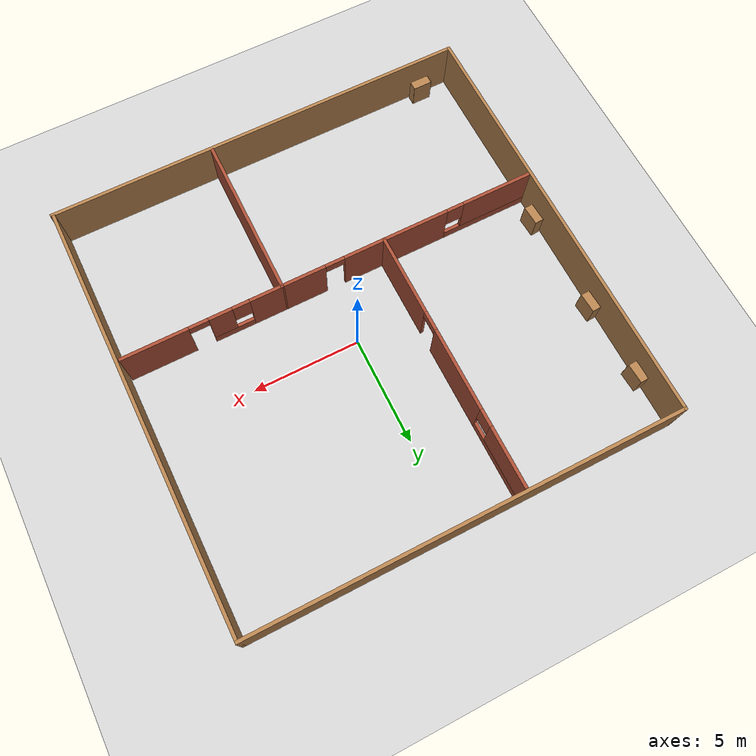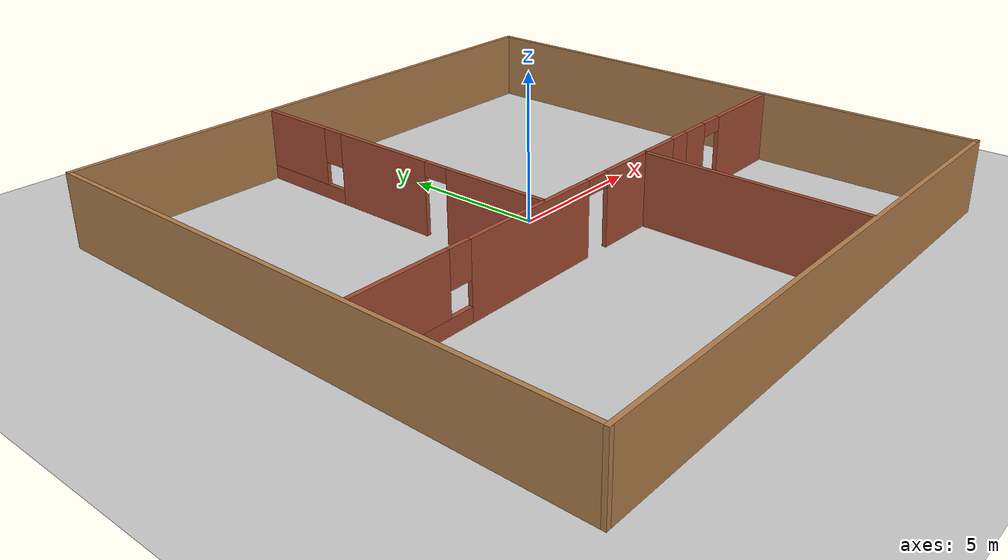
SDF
<sdf version="1.4">
 <world name="default">
  <include><uri>model://sun</uri></include>
  <include><uri>model://ground_plane</uri></include>
  <model name="Class">
   <pose>-0.2122 -0.622471 0 0 -0 0</pose>
   <link name="Wall_16">
    <collision name="Wall_16_Collision">
     <geometry><box><size>19.9 0.15 2.5</size></box></geometry>
     <pose>0 0 1.25 0 -0 0</pose>
    </collision>
    <visual name="Wall_16_Visual">
     <pose>0 0 1.25 0 -0 0</pose>
     <geometry><box><size>19.9 0.15 2.5</size></box></geometry>
     <material>
      <script><uri>file://media/materials/scripts/gazebo.material</uri><name>Gazebo/Wood</name></script>
      <ambient>1 1 1 1</ambient>
     </material>
     <meta><layer>0</layer></meta>
    </visual>
    <pose>-9.9 0 0 0 -0 1.5708</pose>
   </link>
   <link name="Wall_18">
    <collision name="Wall_18_Collision">
     <geometry><box><size>19.9 0.15 2.5</size></box></geometry>
     <pose>0 0 1.25 0 -0 0</pose>
    </collision>
    <visual name="Wall_18_Visual">
     <pose>0 0 1.25 0 -0 0</pose>
     <geometry><box><size>19.9 0.15 2.5</size></box></geometry>
     <material>
      <script><uri>file://media/materials/scripts/gazebo.material</uri><name>Gazebo/Wood</name></script>
      <ambient>1 1 1 1</ambient>
     </material>
     <meta><layer>0</layer></meta>
    </visual>
    <pose>-0.025 9.875 0 0 -0 0</pose>
   </link>
   <link name="Wall_20">
    <collision name="Wall_20_Collision">
     <geometry><box><size>19.9 0.15 2.5</size></box></geometry>
     <pose>0 0 1.25 0 -0 0</pose>
    </collision>
    <visual name="Wall_20_Visual">
     <pose>0 0 1.25 0 -0 0</pose>
     <geometry><box><size>19.9 0.15 2.5</size></box></geometry>
     <material>
      <script><uri>file://media/materials/scripts/gazebo.material</uri><name>Gazebo/Wood</name></script>
      <ambient>1 1 1 1</ambient>
     </material>
     <meta><layer>0</layer></meta>
    </visual>
    <pose>9.85 0 0 0 -0 -1.5708</pose>
   </link>
   <link name="Wall_9">
    <collision name="Wall_9_Collision">
     <geometry><box><size>19.95 0.15 2.5</size></box></geometry>
     <pose>0 0 1.25 0 -0 0</pose>
    </collision>
    <visual name="Wall_9_Visual">
     <pose>0 0 1.25 0 -0 0</pose>
     <geometry><box><size>19.95 0.15 2.5</size></box></geometry>
     <material>
      <script><uri>file://media/materials/scripts/gazebo.material</uri><name>Gazebo/Wood</name></script>
      <ambient>1 1 1 1</ambient>
     </material>
     <meta><layer>0</layer></meta>
    </visual>
    <pose>0 -9.875 0 0 -0 3.14159</pose>
   </link>
   <static>1</static>
  </model>
  <model name="class_Environment_4">
   <pose>-0.25525 -0.64364 0 0 -0 0</pose>
   <link name="Wall_13">
    <pose>-2.50175 3.75264 0 0 -0 1.5708</pose>
    <visual name="Wall_13_Visual_0">
     <pose>-4.15148 0 1.25 0 -0 0</pose>
     <geometry><box><size>3.79703 0.15 2.5</size></box></geometry>
     <material>
      <script><uri>file://media/materials/scripts/gazebo.material</uri><name>Gazebo/Bricks</name></script>
      <ambient>1 1 1 1</ambient>
     </material>
     <meta><layer>0</layer></meta>
    </visual>
    <collision name="Wall_13_Collision_0">
     <geometry><box><size>3.79703 0.15 2.5</size></box></geometry>
     <pose>-4.15148 0 1.25 0 -0 0</pose>
    </collision>
    <visual name="Wall_13_Visual_1">
     <pose>0.563511 0 1.25 0 -0 0</pose>
     <geometry><box><size>3.83296 0.15 2.5</size></box></geometry>
     <material>
      <script><uri>file://media/materials/scripts/gazebo.material</uri><name>Gazebo/Bricks</name></script>
      <ambient>1 1 1 1</ambient>
     </material>
     <meta><layer>0</layer></meta>
    </visual>
    <collision name="Wall_13_Collision_1">
     <geometry><box><size>3.83296 0.15 2.5</size></box></geometry>
     <pose>0.563511 0 1.25 0 -0 0</pose>
    </collision>
    <visual name="Wall_13_Visual_2">
     <pose>4.26499 0 0.25 0 -0 0</pose>
     <geometry><box><size>3.57001 0.15 0.5</size></box></geometry>
     <material>
      <script><uri>file://media/materials/scripts/gazebo.material</uri><name>Gazebo/Bricks</name></script>
      <ambient>1 1 1 1</ambient>
     </material>
     <meta><layer>0</layer></meta>
    </visual>
    <collision name="Wall_13_Collision_2">
     <geometry><box><size>3.57001 0.15 0.5</size></box></geometry>
     <pose>4.26499 0 0.25 0 -0 0</pose>
    </collision>
    <visual name="Wall_13_Visual_3">
     <pose>4.665 0 1.5 0 -0 0</pose>
     <geometry><box><size>2.77001 0.15 2</size></box></geometry>
     <material>
      <script><uri>file://media/materials/scripts/gazebo.material</uri><name>Gazebo/Bricks</name></script>
      <ambient>1 1 1 1</ambient>
     </material>
     <meta><layer>0</layer></meta>
    </visual>
    <collision name="Wall_13_Collision_3">
     <geometry><box><size>2.77001 0.15 2</size></box></geometry>
     <pose>4.665 0 1.5 0 -0 0</pose>
    </collision>
    <visual name="Wall_13_Visual_4">
     <pose>2.87999 0 1.9 0 -0 0</pose>
     <geometry><box><size>0.8 0.15 1.2</size></box></geometry>
     <material>
      <script><uri>file://media/materials/scripts/gazebo.material</uri><name>Gazebo/Bricks</name></script>
      <ambient>1 1 1 1</ambient>
     </material>
     <meta><layer>0</layer></meta>
    </visual>
    <collision name="Wall_13_Collision_4">
     <geometry><box><size>0.8 0.15 1.2</size></box></geometry>
     <pose>2.87999 0 1.9 0 -0 0</pose>
    </collision>
    <visual name="Wall_13_Visual_5">
     <pose>-1.80297 0 2.25 0 -0 0</pose>
     <geometry><box><size>0.9 0.15 0.5</size></box></geometry>
     <material>
      <script><uri>file://media/materials/scripts/gazebo.material</uri><name>Gazebo/Bricks</name></script>
      <ambient>1 1 1 1</ambient>
     </material>
     <meta><layer>0</layer></meta>
    </visual>
    <collision name="Wall_13_Collision_5">
     <geometry><box><size>0.9 0.15 0.5</size></box></geometry>
     <pose>-1.80297 0 2.25 0 -0 0</pose>
    </collision>
   </link>
   <link name="Wall_2">
    <pose>-3.66025 -2.27737 0 0 -0 3.14159</pose>
    <visual name="Wall_2_Visual_0">
     <pose>-5.05326 0 1.25 0 -0 0</pose>
     <geometry><box><size>2.12299 0.15 2.5</size></box></geometry>
     <material>
      <script><uri>file://media/materials/scripts/gazebo.material</uri><name>Gazebo/Bricks</name></script>
      <ambient>1 1 1 1</ambient>
     </material>
     <meta><layer>0</layer></meta>
    </visual>
    <collision name="Wall_2_Collision_0">
     <geometry><box><size>2.12299 0.15 2.5</size></box></geometry>
     <pose>-5.05326 0 1.25 0 -0 0</pose>
    </collision>
    <visual name="Wall_2_Visual_1">
     <pose>-0.570255 0 1.25 0 -0 0</pose>
     <geometry><box><size>5.04303 0.15 2.5</size></box></geometry>
     <material>
      <script><uri>file://media/materials/scripts/gazebo.material</uri><name>Gazebo/Bricks</name></script>
      <ambient>1 1 1 1</ambient>
     </material>
     <meta><layer>0</layer></meta>
    </visual>
    <collision name="Wall_2_Collision_1">
     <geometry><box><size>5.04303 0.15 2.5</size></box></geometry>
     <pose>-0.570255 0 1.25 0 -0 0</pose>
    </collision>
    <visual name="Wall_2_Visual_2">
     <pose>4.03301 0 0.25 0 -0 0</pose>
     <geometry><box><size>4.1635 0.15 0.5</size></box></geometry>
     <material>
      <script><uri>file://media/materials/scripts/gazebo.material</uri><name>Gazebo/Bricks</name></script>
      <ambient>1 1 1 1</ambient>
     </material>
     <meta><layer>0</layer></meta>
    </visual>
    <collision name="Wall_2_Collision_2">
     <geometry><box><size>4.1635 0.15 0.5</size></box></geometry>
     <pose>4.03301 0 0.25 0 -0 0</pose>
    </collision>
    <visual name="Wall_2_Visual_3">
     <pose>4.43301 0 1.5 0 -0 0</pose>
     <geometry><box><size>3.3635 0.15 2</size></box></geometry>
     <material>
      <script><uri>file://media/materials/scripts/gazebo.material</uri><name>Gazebo/Bricks</name></script>
      <ambient>1 1 1 1</ambient>
     </material>
     <meta><layer>0</layer></meta>
    </visual>
    <collision name="Wall_2_Collision_3">
     <geometry><box><size>3.3635 0.15 2</size></box></geometry>
     <pose>4.43301 0 1.5 0 -0 0</pose>
    </collision>
    <visual name="Wall_2_Visual_4">
     <pose>2.35126 0 1.9 0 -0 0</pose>
     <geometry><box><size>0.8 0.15 1.2</size></box></geometry>
     <material>
      <script><uri>file://media/materials/scripts/gazebo.material</uri><name>Gazebo/Bricks</name></script>
      <ambient>1 1 1 1</ambient>
     </material>
     <meta><layer>0</layer></meta>
    </visual>
    <collision name="Wall_2_Collision_4">
     <geometry><box><size>0.8 0.15 1.2</size></box></geometry>
     <pose>2.35126 0 1.9 0 -0 0</pose>
    </collision>
    <visual name="Wall_2_Visual_5">
     <pose>-3.54177 0 2.25 0 -0 0</pose>
     <geometry><box><size>0.9 0.15 0.5</size></box></geometry>
     <material>
      <script><uri>file://media/materials/scripts/gazebo.material</uri><name>Gazebo/Bricks</name></script>
      <ambient>1 1 1 1</ambient>
     </material>
     <meta><layer>0</layer></meta>
    </visual>
    <collision name="Wall_2_Collision_5">
     <geometry><box><size>0.9 0.15 0.5</size></box></geometry>
     <pose>-3.54177 0 2.25 0 -0 0</pose>
    </collision>
   </link>
   <link name="Wall_4">
    <collision name="Wall_4_Collision">
     <geometry><box><size>7.6 0.15 2.5</size></box></geometry>
     <pose>0 0 1.25 0 -0 0</pose>
    </collision>
    <visual name="Wall_4_Visual">
     <pose>0 0 1.25 0 -0 0</pose>
     <geometry><box><size>7.6 0.15 2.5</size></box></geometry>
     <material>
      <script><uri>file://media/materials/scripts/gazebo.material</uri><name>Gazebo/Bricks</name></script>
      <ambient>1 1 1 1</ambient>
     </material>
     <meta><layer>0</layer></meta>
    </visual>
    <pose>2.36425 -6.00237 0 0 -0 -1.57482</pose>
   </link>
   <link name="Wall_6">
    <pose>6.03976 -2.27737 0 0 -0 0</pose>
    <visual name="Wall_6_Visual_0">
     <pose>-2.94317 0 1.25 0 -0 0</pose>
     <geometry><box><size>1.58416 0.15 2.5</size></box></geometry>
     <material>
      <script><uri>file://media/materials/scripts/gazebo.material</uri><name>Gazebo/Bricks</name></script>
      <ambient>1 1 1 1</ambient>
     </material>
     <meta><layer>0</layer></meta>
    </visual>
    <collision name="Wall_6_Collision_0">
     <geometry><box><size>1.58416 0.15 2.5</size></box></geometry>
     <pose>-2.94317 0 1.25 0 -0 0</pose>
    </collision>
    <visual name="Wall_6_Visual_1">
     <pose>2.18651 0 1.25 0 -0 0</pose>
     <geometry><box><size>3.09748 0.15 2.5</size></box></geometry>
     <material>
      <script><uri>file://media/materials/scripts/gazebo.material</uri><name>Gazebo/Bricks</name></script>
      <ambient>1 1 1 1</ambient>
     </material>
     <meta><layer>0</layer></meta>
    </visual>
    <collision name="Wall_6_Collision_1">
     <geometry><box><size>3.09748 0.15 2.5</size></box></geometry>
     <pose>2.18651 0 1.25 0 -0 0</pose>
    </collision>
    <visual name="Wall_6_Visual_2">
     <pose>-1.20666 0 0.25 0 -0 0</pose>
     <geometry><box><size>1.88886 0.15 0.5</size></box></geometry>
     <material>
      <script><uri>file://media/materials/scripts/gazebo.material</uri><name>Gazebo/Bricks</name></script>
      <ambient>1 1 1 1</ambient>
     </material>
     <meta><layer>0</layer></meta>
    </visual>
    <collision name="Wall_6_Collision_2">
     <geometry><box><size>1.88886 0.15 0.5</size></box></geometry>
     <pose>-1.20666 0 0.25 0 -0 0</pose>
    </collision>
    <visual name="Wall_6_Visual_3">
     <pose>-0.806659 0 1.5 0 -0 0</pose>
     <geometry><box><size>1.08886 0.15 2</size></box></geometry>
     <material>
      <script><uri>file://media/materials/scripts/gazebo.material</uri><name>Gazebo/Bricks</name></script>
      <ambient>1 1 1 1</ambient>
     </material>
     <meta><layer>0</layer></meta>
    </visual>
    <collision name="Wall_6_Collision_3">
     <geometry><box><size>1.08886 0.15 2</size></box></geometry>
     <pose>-0.806659 0 1.5 0 -0 0</pose>
    </collision>
    <visual name="Wall_6_Visual_4">
     <pose>-1.75109 0 1.9 0 -0 0</pose>
     <geometry><box><size>0.8 0.15 1.2</size></box></geometry>
     <material>
      <script><uri>file://media/materials/scripts/gazebo.material</uri><name>Gazebo/Bricks</name></script>
      <ambient>1 1 1 1</ambient>
     </material>
     <meta><layer>0</layer></meta>
    </visual>
    <collision name="Wall_6_Collision_4">
     <geometry><box><size>0.8 0.15 1.2</size></box></geometry>
     <pose>-1.75109 0 1.9 0 -0 0</pose>
    </collision>
    <visual name="Wall_6_Visual_5">
     <pose>0.187769 0 2.25 0 -0 0</pose>
     <geometry><box><size>0.9 0.15 0.5</size></box></geometry>
     <material>
      <script><uri>file://media/materials/scripts/gazebo.material</uri><name>Gazebo/Bricks</name></script>
      <ambient>1 1 1 1</ambient>
     </material>
     <meta><layer>0</layer></meta>
    </visual>
    <collision name="Wall_6_Collision_5">
     <geometry><box><size>0.9 0.15 0.5</size></box></geometry>
     <pose>0.187769 0 2.25 0 -0 0</pose>
    </collision>
   </link>
   <static>1</static>
  </model>
  <model name="bookshelf_clone_clone_0">
   <static>1</static>
   <link name="link">
    <inertial><mass>1</mass></inertial>
    <collision name="back">
     <pose>0 0.005 0.6 0 -0 0</pose>
     <geometry><box><size>0.9 0.01 1.2</size></box></geometry>
    </collision>
    <visual name="visual1">
     <pose>0 0.005 0.6 0 -0 0</pose>
     <geometry><box><size>0.9 0.01 1.2</size></box></geometry>
     <material>
      <script><uri>file://media/materials/scripts/gazebo.material</uri><name>Gazebo/Wood</name></script>
     </material>
    </visual>
    <collision name="left_side">
     <pose>0.45 -0.195 0.6 0 -0 0</pose>
     <geometry><box><size>0.02 0.4 1.2</size></box></geometry>
    </collision>
    <visual name="visual2">
     <pose>0.45 -0.195 0.6 0 -0 0</pose>
     <geometry><box><size>0.02 0.4 1.2</size></box></geometry>
     <material>
      <script><uri>file://media/materials/scripts/gazebo.material</uri><name>Gazebo/Wood</name></script>
     </material>
    </visual>
    <collision name="right_side">
     <pose>-0.45 -0.195 0.6 0 -0 0</pose>
     <geometry><box><size>0.02 0.4 1.2</size></box></geometry>
    </collision>
    <visual name="visual3">
     <pose>-0.45 -0.195 0.6 0 -0 0</pose>
     <geometry><box><size>0.02 0.4 1.2</size></box></geometry>
     <material>
      <script><uri>file://media/materials/scripts/gazebo.material</uri><name>Gazebo/Wood</name></script>
     </material>
    </visual>
    <collision name="bottom">
     <pose>0 -0.195 0.03 0 -0 0</pose>
     <geometry><box><size>0.88 0.4 0.06</size></box></geometry>
    </collision>
    <visual name="visual4">
     <pose>0 -0.195 0.03 0 -0 0</pose>
     <geometry><box><size>0.88 0.4 0.06</size></box></geometry>
     <material>
      <script><uri>file://media/materials/scripts/gazebo.material</uri><name>Gazebo/Wood</name></script>
     </material>
    </visual>
    <collision name="top">
     <pose>0 -0.195 1.19 0 -0 0</pose>
     <geometry><box><size>0.88 0.4 0.02</size></box></geometry>
    </collision>
    <visual name="visual5">
     <pose>0 -0.195 1.19 0 -0 0</pose>
     <geometry><box><size>0.88 0.4 0.02</size></box></geometry>
     <material>
      <script><uri>file://media/materials/scripts/gazebo.material</uri><name>Gazebo/Wood</name></script>
     </material>
    </visual>
    <collision name="low_shelf">
     <pose>0 -0.195 0.43 0 -0 0</pose>
     <geometry><box><size>0.88 0.4 0.02</size></box></geometry>
    </collision>
    <visual name="visual6">
     <pose>0 -0.195 0.43 0 -0 0</pose>
     <geometry><box><size>0.88 0.4 0.02</size></box></geometry>
     <material>
      <script><uri>file://media/materials/scripts/gazebo.material</uri><name>Gazebo/Wood</name></script>
     </material>
    </visual>
    <collision name="high_shelf">
     <pose>0 -0.195 0.8 0 -0 0</pose>
     <geometry><box><size>0.88 0.4 0.02</size></box></geometry>
    </collision>
    <visual name="visual7">
     <pose>0 -0.195 0.8 0 -0 0</pose>
     <geometry><box><size>0.88 0.4 0.02</size></box></geometry>
     <material>
      <script><uri>file://media/materials/scripts/gazebo.material</uri><name>Gazebo/Wood</name></script>
     </material>
    </visual>
   </link>
   <pose>-8.53647 -9.98037 0 0 -0 0</pose>
  </model>
  <model name="bookshelf_clone_clone_0_clone">
   <static>1</static>
   <link name="link">
    <inertial><mass>1</mass></inertial>
    <collision name="back">
     <pose>0 0.005 0.6 0 -0 0</pose>
     <geometry><box><size>0.9 0.01 1.2</size></box></geometry>
    </collision>
    <visual name="visual1">
     <pose>0 0.005 0.6 0 -0 0</pose>
     <geometry><box><size>0.9 0.01 1.2</size></box></geometry>
     <material>
      <script><uri>file://media/materials/scripts/gazebo.material</uri><name>Gazebo/Wood</name></script>
     </material>
    </visual>
    <collision name="left_side">
     <pose>0.45 -0.195 0.6 0 -0 0</pose>
     <geometry><box><size>0.02 0.4 1.2</size></box></geometry>
    </collision>
    <visual name="visual2">
     <pose>0.45 -0.195 0.6 0 -0 0</pose>
     <geometry><box><size>0.02 0.4 1.2</size></box></geometry>
     <material>
      <script><uri>file://media/materials/scripts/gazebo.material</uri><name>Gazebo/Wood</name></script>
     </material>
    </visual>
    <collision name="right_side">
     <pose>-0.45 -0.195 0.6 0 -0 0</pose>
     <geometry><box><size>0.02 0.4 1.2</size></box></geometry>
    </collision>
    <visual name="visual3">
     <pose>-0.45 -0.195 0.6 0 -0 0</pose>
     <geometry><box><size>0.02 0.4 1.2</size></box></geometry>
     <material>
      <script><uri>file://media/materials/scripts/gazebo.material</uri><name>Gazebo/Wood</name></script>
     </material>
    </visual>
    <collision name="bottom">
     <pose>0 -0.195 0.03 0 -0 0</pose>
     <geometry><box><size>0.88 0.4 0.06</size></box></geometry>
    </collision>
    <visual name="visual4">
     <pose>0 -0.195 0.03 0 -0 0</pose>
     <geometry><box><size>0.88 0.4 0.06</size></box></geometry>
     <material>
      <script><uri>file://media/materials/scripts/gazebo.material</uri><name>Gazebo/Wood</name></script>
     </material>
    </visual>
    <collision name="top">
     <pose>0 -0.195 1.19 0 -0 0</pose>
     <geometry><box><size>0.88 0.4 0.02</size></box></geometry>
    </collision>
    <visual name="visual5">
     <pose>0 -0.195 1.19 0 -0 0</pose>
     <geometry><box><size>0.88 0.4 0.02</size></box></geometry>
     <material>
      <script><uri>file://media/materials/scripts/gazebo.material</uri><name>Gazebo/Wood</name></script>
     </material>
    </visual>
    <collision name="low_shelf">
     <pose>0 -0.195 0.43 0 -0 0</pose>
     <geometry><box><size>0.88 0.4 0.02</size></box></geometry>
    </collision>
    <visual name="visual6">
     <pose>0 -0.195 0.43 0 -0 0</pose>
     <geometry><box><size>0.88 0.4 0.02</size></box></geometry>
     <material>
      <script><uri>file://media/materials/scripts/gazebo.material</uri><name>Gazebo/Wood</name></script>
     </material>
    </visual>
    <collision name="high_shelf">
     <pose>0 -0.195 0.8 0 -0 0</pose>
     <geometry><box><size>0.88 0.4 0.02</size></box></geometry>
    </collision>
    <visual name="visual7">
     <pose>0 -0.195 0.8 0 -0 0</pose>
     <geometry><box><size>0.88 0.4 0.02</size></box></geometry>
     <material>
      <script><uri>file://media/materials/scripts/gazebo.material</uri><name>Gazebo/Wood</name></script>
     </material>
    </visual>
   </link>
   <pose>-9.55216 -1.57353 0 0 0 -1.51329</pose>
  </model>
  <model name="bookshelf_clone_clone_0_clone_clone">
   <static>1</static>
   <link name="link">
    <inertial><mass>1</mass></inertial>
    <collision name="back">
     <pose>0 0.005 0.6 0 -0 0</pose>
     <geometry><box><size>0.9 0.01 1.2</size></box></geometry>
    </collision>
    <visual name="visual1">
     <pose>0 0.005 0.6 0 -0 0</pose>
     <geometry><box><size>0.9 0.01 1.2</size></box></geometry>
     <material>
      <script><uri>file://media/materials/scripts/gazebo.material</uri><name>Gazebo/Wood</name></script>
     </material>
    </visual>
    <collision name="left_side">
     <pose>0.45 -0.195 0.6 0 -0 0</pose>
     <geometry><box><size>0.02 0.4 1.2</size></box></geometry>
    </collision>
    <visual name="visual2">
     <pose>0.45 -0.195 0.6 0 -0 0</pose>
     <geometry><box><size>0.02 0.4 1.2</size></box></geometry>
     <material>
      <script><uri>file://media/materials/scripts/gazebo.material</uri><name>Gazebo/Wood</name></script>
     </material>
    </visual>
    <collision name="right_side">
     <pose>-0.45 -0.195 0.6 0 -0 0</pose>
     <geometry><box><size>0.02 0.4 1.2</size></box></geometry>
    </collision>
    <visual name="visual3">
     <pose>-0.45 -0.195 0.6 0 -0 0</pose>
     <geometry><box><size>0.02 0.4 1.2</size></box></geometry>
     <material>
      <script><uri>file://media/materials/scripts/gazebo.material</uri><name>Gazebo/Wood</name></script>
     </material>
    </visual>
    <collision name="bottom">
     <pose>0 -0.195 0.03 0 -0 0</pose>
     <geometry><box><size>0.88 0.4 0.06</size></box></geometry>
    </collision>
    <visual name="visual4">
     <pose>0 -0.195 0.03 0 -0 0</pose>
     <geometry><box><size>0.88 0.4 0.06</size></box></geometry>
     <material>
      <script><uri>file://media/materials/scripts/gazebo.material</uri><name>Gazebo/Wood</name></script>
     </material>
    </visual>
    <collision name="top">
     <pose>0 -0.195 1.19 0 -0 0</pose>
     <geometry><box><size>0.88 0.4 0.02</size></box></geometry>
    </collision>
    <visual name="visual5">
     <pose>0 -0.195 1.19 0 -0 0</pose>
     <geometry><box><size>0.88 0.4 0.02</size></box></geometry>
     <material>
      <script><uri>file://media/materials/scripts/gazebo.material</uri><name>Gazebo/Wood</name></script>
     </material>
    </visual>
    <collision name="low_shelf">
     <pose>0 -0.195 0.43 0 -0 0</pose>
     <geometry><box><size>0.88 0.4 0.02</size></box></geometry>
    </collision>
    <visual name="visual6">
     <pose>0 -0.195 0.43 0 -0 0</pose>
     <geometry><box><size>0.88 0.4 0.02</size></box></geometry>
     <material>
      <script><uri>file://media/materials/scripts/gazebo.material</uri><name>Gazebo/Wood</name></script>
     </material>
    </visual>
    <collision name="high_shelf">
     <pose>0 -0.195 0.8 0 -0 0</pose>
     <geometry><box><size>0.88 0.4 0.02</size></box></geometry>
    </collision>
    <visual name="visual7">
     <pose>0 -0.195 0.8 0 -0 0</pose>
     <geometry><box><size>0.88 0.4 0.02</size></box></geometry>
     <material>
      <script><uri>file://media/materials/scripts/gazebo.material</uri><name>Gazebo/Wood</name></script>
     </material>
    </visual>
   </link>
   <pose>-9.57661 3.24349 0 0 0 -1.51329</pose>
  </model>
  <model name="bookshelf_clone_clone_0_clone_clone_0">
   <static>1</static>
   <link name="link">
    <inertial><mass>1</mass></inertial>
    <collision name="back">
     <pose>0 0.005 0.6 0 -0 0</pose>
     <geometry><box><size>0.9 0.01 1.2</size></box></geometry>
    </collision>
    <visual name="visual1">
     <pose>0 0.005 0.6 0 -0 0</pose>
     <geometry><box><size>0.9 0.01 1.2</size></box></geometry>
     <material>
      <script><uri>file://media/materials/scripts/gazebo.material</uri><name>Gazebo/Wood</name></script>
     </material>
    </visual>
    <collision name="left_side">
     <pose>0.45 -0.195 0.6 0 -0 0</pose>
     <geometry><box><size>0.02 0.4 1.2</size></box></geometry>
    </collision>
    <visual name="visual2">
     <pose>0.45 -0.195 0.6 0 -0 0</pose>
     <geometry><box><size>0.02 0.4 1.2</size></box></geometry>
     <material>
      <script><uri>file://media/materials/scripts/gazebo.material</uri><name>Gazebo/Wood</name></script>
     </material>
    </visual>
    <collision name="right_side">
     <pose>-0.45 -0.195 0.6 0 -0 0</pose>
     <geometry><box><size>0.02 0.4 1.2</size></box></geometry>
    </collision>
    <visual name="visual3">
     <pose>-0.45 -0.195 0.6 0 -0 0</pose>
     <geometry><box><size>0.02 0.4 1.2</size></box></geometry>
     <material>
      <script><uri>file://media/materials/scripts/gazebo.material</uri><name>Gazebo/Wood</name></script>
     </material>
    </visual>
    <collision name="bottom">
     <pose>0 -0.195 0.03 0 -0 0</pose>
     <geometry><box><size>0.88 0.4 0.06</size></box></geometry>
    </collision>
    <visual name="visual4">
     <pose>0 -0.195 0.03 0 -0 0</pose>
     <geometry><box><size>0.88 0.4 0.06</size></box></geometry>
     <material>
      <script><uri>file://media/materials/scripts/gazebo.material</uri><name>Gazebo/Wood</name></script>
     </material>
    </visual>
    <collision name="top">
     <pose>0 -0.195 1.19 0 -0 0</pose>
     <geometry><box><size>0.88 0.4 0.02</size></box></geometry>
    </collision>
    <visual name="visual5">
     <pose>0 -0.195 1.19 0 -0 0</pose>
     <geometry><box><size>0.88 0.4 0.02</size></box></geometry>
     <material>
      <script><uri>file://media/materials/scripts/gazebo.material</uri><name>Gazebo/Wood</name></script>
     </material>
    </visual>
    <collision name="low_shelf">
     <pose>0 -0.195 0.43 0 -0 0</pose>
     <geometry><box><size>0.88 0.4 0.02</size></box></geometry>
    </collision>
    <visual name="visual6">
     <pose>0 -0.195 0.43 0 -0 0</pose>
     <geometry><box><size>0.88 0.4 0.02</size></box></geometry>
     <material>
      <script><uri>file://media/materials/scripts/gazebo.material</uri><name>Gazebo/Wood</name></script>
     </material>
    </visual>
    <collision name="high_shelf">
     <pose>0 -0.195 0.8 0 -0 0</pose>
     <geometry><box><size>0.88 0.4 0.02</size></box></geometry>
    </collision>
    <visual name="visual7">
     <pose>0 -0.195 0.8 0 -0 0</pose>
     <geometry><box><size>0.88 0.4 0.02</size></box></geometry>
     <material>
      <script><uri>file://media/materials/scripts/gazebo.material</uri><name>Gazebo/Wood</name></script>
     </material>
    </visual>
   </link>
   <pose>-9.65214 6.90628 0 0 0 -1.51329</pose>
  </model>
 </world>
</sdf>
